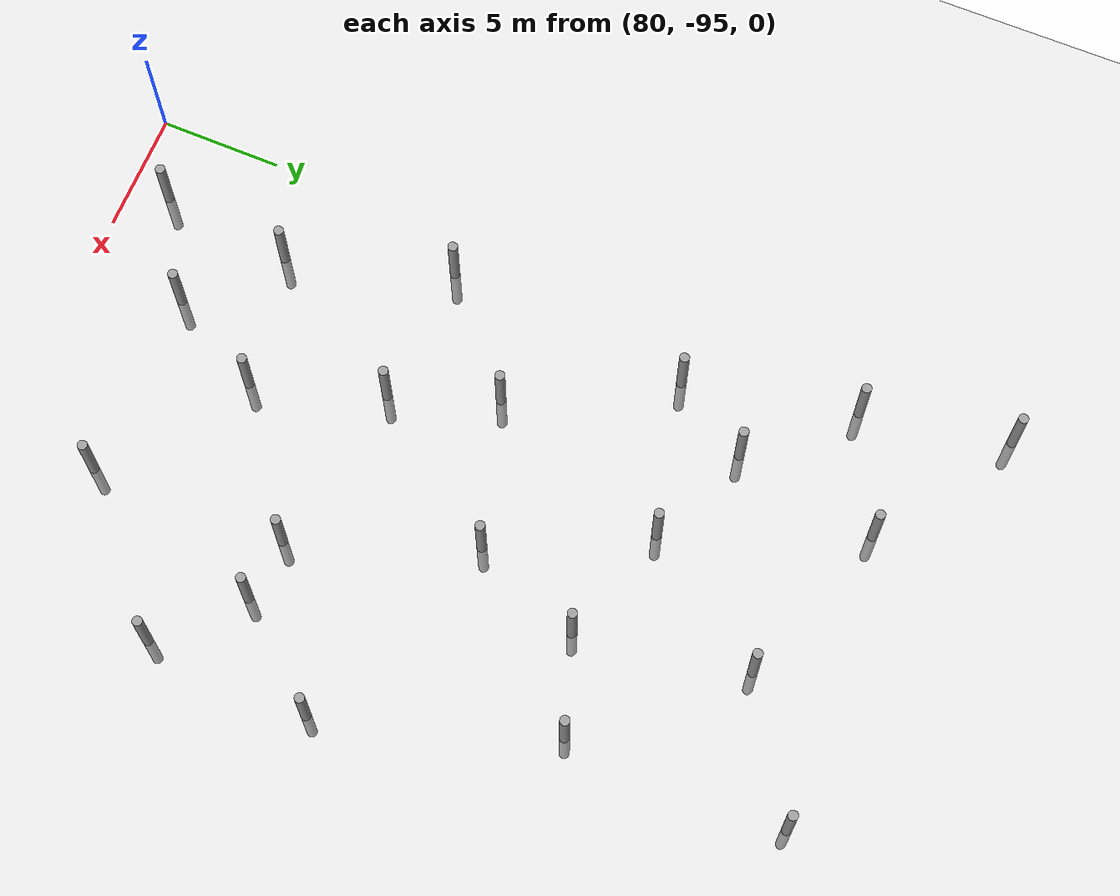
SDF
<sdf version="1.6">
 <world name="default">
  <model name="ground_plane">
   <static>1</static>
   <link name="link">
    <collision name="collision">
     <geometry><plane><normal>0 0 1</normal><size>100 100</size></plane></geometry>
     <surface><friction><ode><mu>100</mu><mu2>50</mu2></ode></friction></surface>
    </collision>
    <visual name="visual">
     <cast_shadows>0</cast_shadows>
     <geometry><plane><normal>0 0 1</normal><size>100 100</size></plane></geometry>
     <material>
      <script><uri>file://media/materials/scripts/gazebo.material</uri><name>Gazebo/Grey</name></script>
     </material>
    </visual>
   </link>
  </model>
  <model name="empty_pillars_13">
   <model name="empty_pillar_clone_0">
    <link name="link">
     <inertial>
      <mass>1</mass>
      <inertia><ixx>0.145833</ixx><ixy>0</ixy><ixz>0</ixz><iyy>0.145833</iyy><iyz>0</iyz><izz>0.125</izz></inertia>
     </inertial>
     <visual name="visual">
      <geometry><cylinder><radius>0.2</radius><length>5</length></cylinder></geometry>
      <material>
       <script><name>Gazebo/Grey</name><uri>file://media/materials/scripts/gazebo.material</uri></script>
       <shader type="vertex"><normal_map>__default__</normal_map></shader>
       <ambient>0.3 0.3 0.3 1</ambient>
       <diffuse>0.7 0.7 0.7 1</diffuse>
       <specular>0.01 0.01 0.01 1</specular>
       <emissive>0 0 0 1</emissive>
      </material>
     </visual>
     <collision name="collision">
      <geometry><cylinder><radius>0.05</radius><length>5</length></cylinder></geometry>
      <surface>
       <friction>
        <ode><mu>1</mu><mu2>1</mu2><fdir1>0 0 0</fdir1><slip1>0</slip1><slip2>0</slip2></ode>
        <torsional>
         <coefficient>1</coefficient>
         <patch_radius>0</patch_radius>
         <surface_radius>0</surface_radius>
         <use_patch_radius>1</use_patch_radius>
         <ode><slip>0</slip></ode>
        </torsional>
       </friction>
       <bounce><restitution_coefficient>0</restitution_coefficient><threshold>1e+06</threshold></bounce>
       <contact>
        <collide_without_contact>0</collide_without_contact>
        <collide_without_contact_bitmask>1</collide_without_contact_bitmask>
        <collide_bitmask>1</collide_bitmask>
        <ode>
         <soft_cfm>0</soft_cfm>
         <soft_erp>0.2</soft_erp>
         <kp>1e+13</kp>
         <kd>1</kd>
         <max_vel>0.01</max_vel>
         <min_depth>0</min_depth>
        </ode>
        <bullet>
         <split_impulse>1</split_impulse>
         <split_impulse_penetration_threshold>-0.01</split_impulse_penetration_threshold>
         <soft_cfm>0</soft_cfm>
         <soft_erp>0.2</soft_erp>
         <kp>1e+13</kp>
         <kd>1</kd>
        </bullet>
       </contact>
      </surface>
     </collision>
    </link>
    <static>0</static>
    <pose>10.3453 -7.35986 0 0 -0 0</pose>
   </model>
   <model name="empty_pillar_clone_1">
    <link name="link">
     <inertial>
      <mass>1</mass>
      <inertia><ixx>0.145833</ixx><ixy>0</ixy><ixz>0</ixz><iyy>0.145833</iyy><iyz>0</iyz><izz>0.125</izz></inertia>
     </inertial>
     <visual name="visual">
      <geometry><cylinder><radius>0.2</radius><length>5</length></cylinder></geometry>
      <material>
       <script><name>Gazebo/Grey</name><uri>file://media/materials/scripts/gazebo.material</uri></script>
       <shader type="vertex"><normal_map>__default__</normal_map></shader>
       <ambient>0.3 0.3 0.3 1</ambient>
       <diffuse>0.7 0.7 0.7 1</diffuse>
       <specular>0.01 0.01 0.01 1</specular>
       <emissive>0 0 0 1</emissive>
      </material>
     </visual>
     <collision name="collision">
      <geometry><cylinder><radius>0.05</radius><length>5</length></cylinder></geometry>
      <surface>
       <friction>
        <ode><mu>1</mu><mu2>1</mu2><fdir1>0 0 0</fdir1><slip1>0</slip1><slip2>0</slip2></ode>
        <torsional>
         <coefficient>1</coefficient>
         <patch_radius>0</patch_radius>
         <surface_radius>0</surface_radius>
         <use_patch_radius>1</use_patch_radius>
         <ode><slip>0</slip></ode>
        </torsional>
       </friction>
       <bounce><restitution_coefficient>0</restitution_coefficient><threshold>1e+06</threshold></bounce>
       <contact>
        <collide_without_contact>0</collide_without_contact>
        <collide_without_contact_bitmask>1</collide_without_contact_bitmask>
        <collide_bitmask>1</collide_bitmask>
        <ode>
         <soft_cfm>0</soft_cfm>
         <soft_erp>0.2</soft_erp>
         <kp>1e+13</kp>
         <kd>1</kd>
         <max_vel>0.01</max_vel>
         <min_depth>0</min_depth>
        </ode>
        <bullet>
         <split_impulse>1</split_impulse>
         <split_impulse_penetration_threshold>-0.01</split_impulse_penetration_threshold>
         <soft_cfm>0</soft_cfm>
         <soft_erp>0.2</soft_erp>
         <kp>1e+13</kp>
         <kd>1</kd>
        </bullet>
       </contact>
      </surface>
     </collision>
    </link>
    <static>0</static>
    <pose>8.92248 2.14838 0 0 -0 0</pose>
   </model>
   <model name="empty_pillar_clone_10">
    <link name="link">
     <inertial>
      <mass>1</mass>
      <inertia><ixx>0.145833</ixx><ixy>0</ixy><ixz>0</ixz><iyy>0.145833</iyy><iyz>0</iyz><izz>0.125</izz></inertia>
     </inertial>
     <visual name="visual">
      <geometry><cylinder><radius>0.2</radius><length>5</length></cylinder></geometry>
      <material>
       <script><name>Gazebo/Grey</name><uri>file://media/materials/scripts/gazebo.material</uri></script>
       <shader type="vertex"><normal_map>__default__</normal_map></shader>
       <ambient>0.3 0.3 0.3 1</ambient>
       <diffuse>0.7 0.7 0.7 1</diffuse>
       <specular>0.01 0.01 0.01 1</specular>
       <emissive>0 0 0 1</emissive>
      </material>
     </visual>
     <collision name="collision">
      <geometry><cylinder><radius>0.05</radius><length>5</length></cylinder></geometry>
      <surface>
       <friction>
        <ode><mu>1</mu><mu2>1</mu2><fdir1>0 0 0</fdir1><slip1>0</slip1><slip2>0</slip2></ode>
        <torsional>
         <coefficient>1</coefficient>
         <patch_radius>0</patch_radius>
         <surface_radius>0</surface_radius>
         <use_patch_radius>1</use_patch_radius>
         <ode><slip>0</slip></ode>
        </torsional>
       </friction>
       <bounce><restitution_coefficient>0</restitution_coefficient><threshold>1e+06</threshold></bounce>
       <contact>
        <collide_without_contact>0</collide_without_contact>
        <collide_without_contact_bitmask>1</collide_without_contact_bitmask>
        <collide_bitmask>1</collide_bitmask>
        <ode>
         <soft_cfm>0</soft_cfm>
         <soft_erp>0.2</soft_erp>
         <kp>1e+13</kp>
         <kd>1</kd>
         <max_vel>0.01</max_vel>
         <min_depth>0</min_depth>
        </ode>
        <bullet>
         <split_impulse>1</split_impulse>
         <split_impulse_penetration_threshold>-0.01</split_impulse_penetration_threshold>
         <soft_cfm>0</soft_cfm>
         <soft_erp>0.2</soft_erp>
         <kp>1e+13</kp>
         <kd>1</kd>
        </bullet>
       </contact>
      </surface>
     </collision>
    </link>
    <static>0</static>
    <pose>13.5083 -16.8403 0 0 -0 0</pose>
   </model>
   <model name="empty_pillar_clone_11">
    <link name="link">
     <inertial>
      <mass>1</mass>
      <inertia><ixx>0.145833</ixx><ixy>0</ixy><ixz>0</ixz><iyy>0.145833</iyy><iyz>0</iyz><izz>0.125</izz></inertia>
     </inertial>
     <visual name="visual">
      <geometry><cylinder><radius>0.2</radius><length>5</length></cylinder></geometry>
      <material>
       <script><name>Gazebo/Grey</name><uri>file://media/materials/scripts/gazebo.material</uri></script>
       <shader type="vertex"><normal_map>__default__</normal_map></shader>
       <ambient>0.3 0.3 0.3 1</ambient>
       <diffuse>0.7 0.7 0.7 1</diffuse>
       <specular>0.01 0.01 0.01 1</specular>
       <emissive>0 0 0 1</emissive>
      </material>
     </visual>
     <collision name="collision">
      <geometry><cylinder><radius>0.05</radius><length>5</length></cylinder></geometry>
      <surface>
       <friction>
        <ode><mu>1</mu><mu2>1</mu2><fdir1>0 0 0</fdir1><slip1>0</slip1><slip2>0</slip2></ode>
        <torsional>
         <coefficient>1</coefficient>
         <patch_radius>0</patch_radius>
         <surface_radius>0</surface_radius>
         <use_patch_radius>1</use_patch_radius>
         <ode><slip>0</slip></ode>
        </torsional>
       </friction>
       <bounce><restitution_coefficient>0</restitution_coefficient><threshold>1e+06</threshold></bounce>
       <contact>
        <collide_without_contact>0</collide_without_contact>
        <collide_without_contact_bitmask>1</collide_without_contact_bitmask>
        <collide_bitmask>1</collide_bitmask>
        <ode>
         <soft_cfm>0</soft_cfm>
         <soft_erp>0.2</soft_erp>
         <kp>1e+13</kp>
         <kd>1</kd>
         <max_vel>0.01</max_vel>
         <min_depth>0</min_depth>
        </ode>
        <bullet>
         <split_impulse>1</split_impulse>
         <split_impulse_penetration_threshold>-0.01</split_impulse_penetration_threshold>
         <soft_cfm>0</soft_cfm>
         <soft_erp>0.2</soft_erp>
         <kp>1e+13</kp>
         <kd>1</kd>
        </bullet>
       </contact>
      </surface>
     </collision>
    </link>
    <static>0</static>
    <pose>7.98536 -17.8403 0 0 -0 0</pose>
   </model>
   <model name="empty_pillar_clone_2">
    <link name="link">
     <inertial>
      <mass>1</mass>
      <inertia><ixx>0.145833</ixx><ixy>0</ixy><ixz>0</ixz><iyy>0.145833</iyy><iyz>0</iyz><izz>0.125</izz></inertia>
     </inertial>
     <visual name="visual">
      <geometry><cylinder><radius>0.2</radius><length>5</length></cylinder></geometry>
      <material>
       <script><name>Gazebo/Grey</name><uri>file://media/materials/scripts/gazebo.material</uri></script>
       <shader type="vertex"><normal_map>__default__</normal_map></shader>
       <ambient>0.3 0.3 0.3 1</ambient>
       <diffuse>0.7 0.7 0.7 1</diffuse>
       <specular>0.01 0.01 0.01 1</specular>
       <emissive>0 0 0 1</emissive>
      </material>
     </visual>
     <collision name="collision">
      <geometry><cylinder><radius>0.05</radius><length>5</length></cylinder></geometry>
      <surface>
       <friction>
        <ode><mu>1</mu><mu2>1</mu2><fdir1>0 0 0</fdir1><slip1>0</slip1><slip2>0</slip2></ode>
        <torsional>
         <coefficient>1</coefficient>
         <patch_radius>0</patch_radius>
         <surface_radius>0</surface_radius>
         <use_patch_radius>1</use_patch_radius>
         <ode><slip>0</slip></ode>
        </torsional>
       </friction>
       <bounce><restitution_coefficient>0</restitution_coefficient><threshold>1e+06</threshold></bounce>
       <contact>
        <collide_without_contact>0</collide_without_contact>
        <collide_without_contact_bitmask>1</collide_without_contact_bitmask>
        <collide_bitmask>1</collide_bitmask>
        <ode>
         <soft_cfm>0</soft_cfm>
         <soft_erp>0.2</soft_erp>
         <kp>1e+13</kp>
         <kd>1</kd>
         <max_vel>0.01</max_vel>
         <min_depth>0</min_depth>
        </ode>
        <bullet>
         <split_impulse>1</split_impulse>
         <split_impulse_penetration_threshold>-0.01</split_impulse_penetration_threshold>
         <soft_cfm>0</soft_cfm>
         <soft_erp>0.2</soft_erp>
         <kp>1e+13</kp>
         <kd>1</kd>
        </bullet>
       </contact>
      </surface>
     </collision>
    </link>
    <static>0</static>
    <pose>6.92427 -1.06221 0 0 -0 0</pose>
   </model>
   <model name="empty_pillar_clone_27">
    <link name="link">
     <inertial>
      <mass>1</mass>
      <inertia><ixx>0.145833</ixx><ixy>0</ixy><ixz>0</ixz><iyy>0.145833</iyy><iyz>0</iyz><izz>0.125</izz></inertia>
     </inertial>
     <visual name="visual">
      <geometry><cylinder><radius>0.2</radius><length>5</length></cylinder></geometry>
      <material>
       <script><name>Gazebo/Grey</name><uri>file://media/materials/scripts/gazebo.material</uri></script>
       <shader type="vertex"><normal_map>__default__</normal_map></shader>
       <ambient>0.3 0.3 0.3 1</ambient>
       <diffuse>0.7 0.7 0.7 1</diffuse>
       <specular>0.01 0.01 0.01 1</specular>
       <emissive>0 0 0 1</emissive>
      </material>
     </visual>
     <collision name="collision">
      <geometry><cylinder><radius>0.05</radius><length>5</length></cylinder></geometry>
      <surface>
       <friction>
        <ode><mu>1</mu><mu2>1</mu2><fdir1>0 0 0</fdir1><slip1>0</slip1><slip2>0</slip2></ode>
        <torsional>
         <coefficient>1</coefficient>
         <patch_radius>0</patch_radius>
         <surface_radius>0</surface_radius>
         <use_patch_radius>1</use_patch_radius>
         <ode><slip>0</slip></ode>
        </torsional>
       </friction>
       <bounce><restitution_coefficient>0</restitution_coefficient><threshold>1e+06</threshold></bounce>
       <contact>
        <collide_without_contact>0</collide_without_contact>
        <collide_without_contact_bitmask>1</collide_without_contact_bitmask>
        <collide_bitmask>1</collide_bitmask>
        <ode>
         <soft_cfm>0</soft_cfm>
         <soft_erp>0.2</soft_erp>
         <kp>1e+13</kp>
         <kd>1</kd>
         <max_vel>0.01</max_vel>
         <min_depth>0</min_depth>
        </ode>
        <bullet>
         <split_impulse>1</split_impulse>
         <split_impulse_penetration_threshold>-0.01</split_impulse_penetration_threshold>
         <soft_cfm>0</soft_cfm>
         <soft_erp>0.2</soft_erp>
         <kp>1e+13</kp>
         <kd>1</kd>
        </bullet>
       </contact>
      </surface>
     </collision>
    </link>
    <static>0</static>
    <pose>4.32163 11.823 0 0 -0 0</pose>
   </model>
   <model name="empty_pillar_clone_29">
    <link name="link">
     <inertial>
      <mass>1</mass>
      <inertia><ixx>0.145833</ixx><ixy>0</ixy><ixz>0</ixz><iyy>0.145833</iyy><iyz>0</iyz><izz>0.125</izz></inertia>
     </inertial>
     <visual name="visual">
      <geometry><cylinder><radius>0.2</radius><length>5</length></cylinder></geometry>
      <material>
       <script><name>Gazebo/Grey</name><uri>file://media/materials/scripts/gazebo.material</uri></script>
       <shader type="vertex"><normal_map>__default__</normal_map></shader>
       <ambient>0.3 0.3 0.3 1</ambient>
       <diffuse>0.7 0.7 0.7 1</diffuse>
       <specular>0.01 0.01 0.01 1</specular>
       <emissive>0 0 0 1</emissive>
      </material>
     </visual>
     <collision name="collision">
      <geometry><cylinder><radius>0.05</radius><length>5</length></cylinder></geometry>
      <surface>
       <friction>
        <ode><mu>1</mu><mu2>1</mu2><fdir1>0 0 0</fdir1><slip1>0</slip1><slip2>0</slip2></ode>
        <torsional>
         <coefficient>1</coefficient>
         <patch_radius>0</patch_radius>
         <surface_radius>0</surface_radius>
         <use_patch_radius>1</use_patch_radius>
         <ode><slip>0</slip></ode>
        </torsional>
       </friction>
       <bounce><restitution_coefficient>0</restitution_coefficient><threshold>1e+06</threshold></bounce>
       <contact>
        <collide_without_contact>0</collide_without_contact>
        <collide_without_contact_bitmask>1</collide_without_contact_bitmask>
        <collide_bitmask>1</collide_bitmask>
        <ode>
         <soft_cfm>0</soft_cfm>
         <soft_erp>0.2</soft_erp>
         <kp>1e+13</kp>
         <kd>1</kd>
         <max_vel>0.01</max_vel>
         <min_depth>0</min_depth>
        </ode>
        <bullet>
         <split_impulse>1</split_impulse>
         <split_impulse_penetration_threshold>-0.01</split_impulse_penetration_threshold>
         <soft_cfm>0</soft_cfm>
         <soft_erp>0.2</soft_erp>
         <kp>1e+13</kp>
         <kd>1</kd>
        </bullet>
       </contact>
      </surface>
     </collision>
    </link>
    <static>0</static>
    <pose>10.08 8.0876 0 0 -0 0</pose>
   </model>
   <model name="empty_pillar_clone_3">
    <link name="link">
     <inertial>
      <mass>1</mass>
      <inertia><ixx>0.145833</ixx><ixy>0</ixy><ixz>0</ixz><iyy>0.145833</iyy><iyz>0</iyz><izz>0.125</izz></inertia>
     </inertial>
     <visual name="visual">
      <geometry><cylinder><radius>0.2</radius><length>5</length></cylinder></geometry>
      <material>
       <script><name>Gazebo/Grey</name><uri>file://media/materials/scripts/gazebo.material</uri></script>
       <shader type="vertex"><normal_map>__default__</normal_map></shader>
       <ambient>0.3 0.3 0.3 1</ambient>
       <diffuse>0.7 0.7 0.7 1</diffuse>
       <specular>0.01 0.01 0.01 1</specular>
       <emissive>0 0 0 1</emissive>
      </material>
     </visual>
     <collision name="collision">
      <geometry><cylinder><radius>0.05</radius><length>5</length></cylinder></geometry>
      <surface>
       <friction>
        <ode><mu>1</mu><mu2>1</mu2><fdir1>0 0 0</fdir1><slip1>0</slip1><slip2>0</slip2></ode>
        <torsional>
         <coefficient>1</coefficient>
         <patch_radius>0</patch_radius>
         <surface_radius>0</surface_radius>
         <use_patch_radius>1</use_patch_radius>
         <ode><slip>0</slip></ode>
        </torsional>
       </friction>
       <bounce><restitution_coefficient>0</restitution_coefficient><threshold>1e+06</threshold></bounce>
       <contact>
        <collide_without_contact>0</collide_without_contact>
        <collide_without_contact_bitmask>1</collide_without_contact_bitmask>
        <collide_bitmask>1</collide_bitmask>
        <ode>
         <soft_cfm>0</soft_cfm>
         <soft_erp>0.2</soft_erp>
         <kp>1e+13</kp>
         <kd>1</kd>
         <max_vel>0.01</max_vel>
         <min_depth>0</min_depth>
        </ode>
        <bullet>
         <split_impulse>1</split_impulse>
         <split_impulse_penetration_threshold>-0.01</split_impulse_penetration_threshold>
         <soft_cfm>0</soft_cfm>
         <soft_erp>0.2</soft_erp>
         <kp>1e+13</kp>
         <kd>1</kd>
        </bullet>
       </contact>
      </surface>
     </collision>
    </link>
    <static>0</static>
    <pose>5.99316 -11.2211 0 0 -0 0</pose>
   </model>
   <model name="empty_pillar_clone_31">
    <link name="link">
     <inertial>
      <mass>1</mass>
      <inertia><ixx>0.145833</ixx><ixy>0</ixy><ixz>0</ixz><iyy>0.145833</iyy><iyz>0</iyz><izz>0.125</izz></inertia>
     </inertial>
     <visual name="visual">
      <geometry><cylinder><radius>0.2</radius><length>5</length></cylinder></geometry>
      <material>
       <script><name>Gazebo/Grey</name><uri>file://media/materials/scripts/gazebo.material</uri></script>
       <shader type="vertex"><normal_map>__default__</normal_map></shader>
       <ambient>0.3 0.3 0.3 1</ambient>
       <diffuse>0.7 0.7 0.7 1</diffuse>
       <specular>0.01 0.01 0.01 1</specular>
       <emissive>0 0 0 1</emissive>
      </material>
     </visual>
     <collision name="collision">
      <geometry><cylinder><radius>0.05</radius><length>5</length></cylinder></geometry>
      <surface>
       <friction>
        <ode><mu>1</mu><mu2>1</mu2><fdir1>0 0 0</fdir1><slip1>0</slip1><slip2>0</slip2></ode>
        <torsional>
         <coefficient>1</coefficient>
         <patch_radius>0</patch_radius>
         <surface_radius>0</surface_radius>
         <use_patch_radius>1</use_patch_radius>
         <ode><slip>0</slip></ode>
        </torsional>
       </friction>
       <bounce><restitution_coefficient>0</restitution_coefficient><threshold>1e+06</threshold></bounce>
       <contact>
        <collide_without_contact>0</collide_without_contact>
        <collide_without_contact_bitmask>1</collide_without_contact_bitmask>
        <collide_bitmask>1</collide_bitmask>
        <ode>
         <soft_cfm>0</soft_cfm>
         <soft_erp>0.2</soft_erp>
         <kp>1e+13</kp>
         <kd>1</kd>
         <max_vel>0.01</max_vel>
         <min_depth>0</min_depth>
        </ode>
        <bullet>
         <split_impulse>1</split_impulse>
         <split_impulse_penetration_threshold>-0.01</split_impulse_penetration_threshold>
         <soft_cfm>0</soft_cfm>
         <soft_erp>0.2</soft_erp>
         <kp>1e+13</kp>
         <kd>1</kd>
        </bullet>
       </contact>
      </surface>
     </collision>
    </link>
    <static>0</static>
    <pose>22.0722 9.04182 0 0 -0 0</pose>
   </model>
   <model name="empty_pillar_clone_32">
    <link name="link">
     <inertial>
      <mass>1</mass>
      <inertia><ixx>0.145833</ixx><ixy>0</ixy><ixz>0</ixz><iyy>0.145833</iyy><iyz>0</iyz><izz>0.125</izz></inertia>
     </inertial>
     <visual name="visual">
      <geometry><cylinder><radius>0.2</radius><length>5</length></cylinder></geometry>
      <material>
       <script><name>Gazebo/Grey</name><uri>file://media/materials/scripts/gazebo.material</uri></script>
       <shader type="vertex"><normal_map>__default__</normal_map></shader>
       <ambient>0.3 0.3 0.3 1</ambient>
       <diffuse>0.7 0.7 0.7 1</diffuse>
       <specular>0.01 0.01 0.01 1</specular>
       <emissive>0 0 0 1</emissive>
      </material>
     </visual>
     <collision name="collision">
      <geometry><cylinder><radius>0.05</radius><length>5</length></cylinder></geometry>
      <surface>
       <friction>
        <ode><mu>1</mu><mu2>1</mu2><fdir1>0 0 0</fdir1><slip1>0</slip1><slip2>0</slip2></ode>
        <torsional>
         <coefficient>1</coefficient>
         <patch_radius>0</patch_radius>
         <surface_radius>0</surface_radius>
         <use_patch_radius>1</use_patch_radius>
         <ode><slip>0</slip></ode>
        </torsional>
       </friction>
       <bounce><restitution_coefficient>0</restitution_coefficient><threshold>1e+06</threshold></bounce>
       <contact>
        <collide_without_contact>0</collide_without_contact>
        <collide_without_contact_bitmask>1</collide_without_contact_bitmask>
        <collide_bitmask>1</collide_bitmask>
        <ode>
         <soft_cfm>0</soft_cfm>
         <soft_erp>0.2</soft_erp>
         <kp>1e+13</kp>
         <kd>1</kd>
         <max_vel>0.01</max_vel>
         <min_depth>0</min_depth>
        </ode>
        <bullet>
         <split_impulse>1</split_impulse>
         <split_impulse_penetration_threshold>-0.01</split_impulse_penetration_threshold>
         <soft_cfm>0</soft_cfm>
         <soft_erp>0.2</soft_erp>
         <kp>1e+13</kp>
         <kd>1</kd>
        </bullet>
       </contact>
      </surface>
     </collision>
    </link>
    <static>0</static>
    <pose>21.9854 0.15966 0 0 -0 0</pose>
   </model>
   <model name="empty_pillar_clone_33">
    <link name="link">
     <inertial>
      <mass>1</mass>
      <inertia><ixx>0.145833</ixx><ixy>0</ixy><ixz>0</ixz><iyy>0.145833</iyy><iyz>0</iyz><izz>0.125</izz></inertia>
     </inertial>
     <visual name="visual">
      <geometry><cylinder><radius>0.2</radius><length>5</length></cylinder></geometry>
      <material>
       <script><name>Gazebo/Grey</name><uri>file://media/materials/scripts/gazebo.material</uri></script>
       <shader type="vertex"><normal_map>__default__</normal_map></shader>
       <ambient>0.3 0.3 0.3 1</ambient>
       <diffuse>0.7 0.7 0.7 1</diffuse>
       <specular>0.01 0.01 0.01 1</specular>
       <emissive>0 0 0 1</emissive>
      </material>
     </visual>
     <collision name="collision">
      <geometry><cylinder><radius>0.05</radius><length>5</length></cylinder></geometry>
      <surface>
       <friction>
        <ode><mu>1</mu><mu2>1</mu2><fdir1>0 0 0</fdir1><slip1>0</slip1><slip2>0</slip2></ode>
        <torsional>
         <coefficient>1</coefficient>
         <patch_radius>0</patch_radius>
         <surface_radius>0</surface_radius>
         <use_patch_radius>1</use_patch_radius>
         <ode><slip>0</slip></ode>
        </torsional>
       </friction>
       <bounce><restitution_coefficient>0</restitution_coefficient><threshold>1e+06</threshold></bounce>
       <contact>
        <collide_without_contact>0</collide_without_contact>
        <collide_without_contact_bitmask>1</collide_without_contact_bitmask>
        <collide_bitmask>1</collide_bitmask>
        <ode>
         <soft_cfm>0</soft_cfm>
         <soft_erp>0.2</soft_erp>
         <kp>1e+13</kp>
         <kd>1</kd>
         <max_vel>0.01</max_vel>
         <min_depth>0</min_depth>
        </ode>
        <bullet>
         <split_impulse>1</split_impulse>
         <split_impulse_penetration_threshold>-0.01</split_impulse_penetration_threshold>
         <soft_cfm>0</soft_cfm>
         <soft_erp>0.2</soft_erp>
         <kp>1e+13</kp>
         <kd>1</kd>
        </bullet>
       </contact>
      </surface>
     </collision>
    </link>
    <static>0</static>
    <pose>21.5621 -13.0704 0 0 -0 0</pose>
   </model>
   <model name="empty_pillar_clone_34">
    <link name="link">
     <inertial>
      <mass>1</mass>
      <inertia><ixx>0.145833</ixx><ixy>0</ixy><ixz>0</ixz><iyy>0.145833</iyy><iyz>0</iyz><izz>0.125</izz></inertia>
     </inertial>
     <visual name="visual">
      <geometry><cylinder><radius>0.2</radius><length>5</length></cylinder></geometry>
      <material>
       <script><name>Gazebo/Grey</name><uri>file://media/materials/scripts/gazebo.material</uri></script>
       <shader type="vertex"><normal_map>__default__</normal_map></shader>
       <ambient>0.3 0.3 0.3 1</ambient>
       <diffuse>0.7 0.7 0.7 1</diffuse>
       <specular>0.01 0.01 0.01 1</specular>
       <emissive>0 0 0 1</emissive>
      </material>
     </visual>
     <collision name="collision">
      <geometry><cylinder><radius>0.05</radius><length>5</length></cylinder></geometry>
      <surface>
       <friction>
        <ode><mu>1</mu><mu2>1</mu2><fdir1>0 0 0</fdir1><slip1>0</slip1><slip2>0</slip2></ode>
        <torsional>
         <coefficient>1</coefficient>
         <patch_radius>0</patch_radius>
         <surface_radius>0</surface_radius>
         <use_patch_radius>1</use_patch_radius>
         <ode><slip>0</slip></ode>
        </torsional>
       </friction>
       <bounce><restitution_coefficient>0</restitution_coefficient><threshold>1e+06</threshold></bounce>
       <contact>
        <collide_without_contact>0</collide_without_contact>
        <collide_without_contact_bitmask>1</collide_without_contact_bitmask>
        <collide_bitmask>1</collide_bitmask>
        <ode>
         <soft_cfm>0</soft_cfm>
         <soft_erp>0.2</soft_erp>
         <kp>1e+13</kp>
         <kd>1</kd>
         <max_vel>0.01</max_vel>
         <min_depth>0</min_depth>
        </ode>
        <bullet>
         <split_impulse>1</split_impulse>
         <split_impulse_penetration_threshold>-0.01</split_impulse_penetration_threshold>
         <soft_cfm>0</soft_cfm>
         <soft_erp>0.2</soft_erp>
         <kp>1e+13</kp>
         <kd>1</kd>
        </bullet>
       </contact>
      </surface>
     </collision>
    </link>
    <static>0</static>
    <pose>19.0861 -20.8946 0 0 -0 0</pose>
   </model>
   <model name="empty_pillar_clone_48">
    <link name="link">
     <inertial>
      <mass>1</mass>
      <inertia><ixx>0.145833</ixx><ixy>0</ixy><ixz>0</ixz><iyy>0.145833</iyy><iyz>0</iyz><izz>0.125</izz></inertia>
     </inertial>
     <visual name="visual">
      <geometry><cylinder><radius>0.2</radius><length>5</length></cylinder></geometry>
      <material>
       <script><name>Gazebo/Grey</name><uri>file://media/materials/scripts/gazebo.material</uri></script>
       <shader type="vertex"><normal_map>__default__</normal_map></shader>
       <ambient>0.3 0.3 0.3 1</ambient>
       <diffuse>0.7 0.7 0.7 1</diffuse>
       <specular>0.01 0.01 0.01 1</specular>
       <emissive>0 0 0 1</emissive>
      </material>
     </visual>
     <collision name="collision">
      <geometry><cylinder><radius>0.05</radius><length>5</length></cylinder></geometry>
      <surface>
       <friction>
        <ode><mu>1</mu><mu2>1</mu2><fdir1>0 0 0</fdir1><slip1>0</slip1><slip2>0</slip2></ode>
        <torsional>
         <coefficient>1</coefficient>
         <patch_radius>0</patch_radius>
         <surface_radius>0</surface_radius>
         <use_patch_radius>1</use_patch_radius>
         <ode><slip>0</slip></ode>
        </torsional>
       </friction>
       <bounce><restitution_coefficient>0</restitution_coefficient><threshold>1e+06</threshold></bounce>
       <contact>
        <collide_without_contact>0</collide_without_contact>
        <collide_without_contact_bitmask>1</collide_without_contact_bitmask>
        <collide_bitmask>1</collide_bitmask>
        <ode>
         <soft_cfm>0</soft_cfm>
         <soft_erp>0.2</soft_erp>
         <kp>1e+13</kp>
         <kd>1</kd>
         <max_vel>0.01</max_vel>
         <min_depth>0</min_depth>
        </ode>
        <bullet>
         <split_impulse>1</split_impulse>
         <split_impulse_penetration_threshold>-0.01</split_impulse_penetration_threshold>
         <soft_cfm>0</soft_cfm>
         <soft_erp>0.2</soft_erp>
         <kp>1e+13</kp>
         <kd>1</kd>
        </bullet>
       </contact>
      </surface>
     </collision>
    </link>
    <static>0</static>
    <pose>16.2633 -5.65052 0 0 -0 0</pose>
   </model>
   <model name="empty_pillar_clone_51">
    <link name="link">
     <inertial>
      <mass>1</mass>
      <inertia><ixx>0.145833</ixx><ixy>0</ixy><ixz>0</ixz><iyy>0.145833</iyy><iyz>0</iyz><izz>0.125</izz></inertia>
     </inertial>
     <visual name="visual">
      <geometry><cylinder><radius>0.2</radius><length>5</length></cylinder></geometry>
      <material>
       <script><name>Gazebo/Grey</name><uri>file://media/materials/scripts/gazebo.material</uri></script>
       <shader type="vertex"><normal_map>__default__</normal_map></shader>
       <ambient>0.3 0.3 0.3 1</ambient>
       <diffuse>0.7 0.7 0.7 1</diffuse>
       <specular>0.01 0.01 0.01 1</specular>
       <emissive>0 0 0 1</emissive>
      </material>
     </visual>
     <collision name="collision">
      <geometry><cylinder><radius>0.05</radius><length>5</length></cylinder></geometry>
      <surface>
       <friction>
        <ode><mu>1</mu><mu2>1</mu2><fdir1>0 0 0</fdir1><slip1>0</slip1><slip2>0</slip2></ode>
        <torsional>
         <coefficient>1</coefficient>
         <patch_radius>0</patch_radius>
         <surface_radius>0</surface_radius>
         <use_patch_radius>1</use_patch_radius>
         <ode><slip>0</slip></ode>
        </torsional>
       </friction>
       <bounce><restitution_coefficient>0</restitution_coefficient><threshold>1e+06</threshold></bounce>
       <contact>
        <collide_without_contact>0</collide_without_contact>
        <collide_without_contact_bitmask>1</collide_without_contact_bitmask>
        <collide_bitmask>1</collide_bitmask>
        <ode>
         <soft_cfm>0</soft_cfm>
         <soft_erp>0.2</soft_erp>
         <kp>1e+13</kp>
         <kd>1</kd>
         <max_vel>0.01</max_vel>
         <min_depth>0</min_depth>
        </ode>
        <bullet>
         <split_impulse>1</split_impulse>
         <split_impulse_penetration_threshold>-0.01</split_impulse_penetration_threshold>
         <soft_cfm>0</soft_cfm>
         <soft_erp>0.2</soft_erp>
         <kp>1e+13</kp>
         <kd>1</kd>
        </bullet>
       </contact>
      </surface>
     </collision>
    </link>
    <static>0</static>
    <pose>11.8943 -11.5792 0 0 -0 0</pose>
   </model>
   <model name="empty_pillar_clone_52">
    <link name="link">
     <inertial>
      <mass>1</mass>
      <inertia><ixx>0.145833</ixx><ixy>0</ixy><ixz>0</ixz><iyy>0.145833</iyy><iyz>0</iyz><izz>0.125</izz></inertia>
     </inertial>
     <visual name="visual">
      <geometry><cylinder><radius>0.2</radius><length>5</length></cylinder></geometry>
      <material>
       <script><name>Gazebo/Grey</name><uri>file://media/materials/scripts/gazebo.material</uri></script>
       <shader type="vertex"><normal_map>__default__</normal_map></shader>
       <ambient>0.3 0.3 0.3 1</ambient>
       <diffuse>0.7 0.7 0.7 1</diffuse>
       <specular>0.01 0.01 0.01 1</specular>
       <emissive>0 0 0 1</emissive>
      </material>
     </visual>
     <collision name="collision">
      <geometry><cylinder><radius>0.05</radius><length>5</length></cylinder></geometry>
      <surface>
       <friction>
        <ode><mu>1</mu><mu2>1</mu2><fdir1>0 0 0</fdir1><slip1>0</slip1><slip2>0</slip2></ode>
        <torsional>
         <coefficient>1</coefficient>
         <patch_radius>0</patch_radius>
         <surface_radius>0</surface_radius>
         <use_patch_radius>1</use_patch_radius>
         <ode><slip>0</slip></ode>
        </torsional>
       </friction>
       <bounce><restitution_coefficient>0</restitution_coefficient><threshold>1e+06</threshold></bounce>
       <contact>
        <collide_without_contact>0</collide_without_contact>
        <collide_without_contact_bitmask>1</collide_without_contact_bitmask>
        <collide_bitmask>1</collide_bitmask>
        <ode>
         <soft_cfm>0</soft_cfm>
         <soft_erp>0.2</soft_erp>
         <kp>1e+13</kp>
         <kd>1</kd>
         <max_vel>0.01</max_vel>
         <min_depth>0</min_depth>
        </ode>
        <bullet>
         <split_impulse>1</split_impulse>
         <split_impulse_penetration_threshold>-0.01</split_impulse_penetration_threshold>
         <soft_cfm>0</soft_cfm>
         <soft_erp>0.2</soft_erp>
         <kp>1e+13</kp>
         <kd>1</kd>
        </bullet>
       </contact>
      </surface>
     </collision>
    </link>
    <static>0</static>
    <pose>11.2833 -20.8743 0 0 -0 0</pose>
   </model>
   <model name="empty_pillar_clone_53">
    <link name="link">
     <inertial>
      <mass>1</mass>
      <inertia><ixx>0.145833</ixx><ixy>0</ixy><ixz>0</ixz><iyy>0.145833</iyy><iyz>0</iyz><izz>0.125</izz></inertia>
     </inertial>
     <visual name="visual">
      <geometry><cylinder><radius>0.2</radius><length>5</length></cylinder></geometry>
      <material>
       <script><name>Gazebo/Grey</name><uri>file://media/materials/scripts/gazebo.material</uri></script>
       <shader type="vertex"><normal_map>__default__</normal_map></shader>
       <ambient>0.3 0.3 0.3 1</ambient>
       <diffuse>0.7 0.7 0.7 1</diffuse>
       <specular>0.01 0.01 0.01 1</specular>
       <emissive>0 0 0 1</emissive>
      </material>
     </visual>
     <collision name="collision">
      <geometry><cylinder><radius>0.05</radius><length>5</length></cylinder></geometry>
      <surface>
       <friction>
        <ode><mu>1</mu><mu2>1</mu2><fdir1>0 0 0</fdir1><slip1>0</slip1><slip2>0</slip2></ode>
        <torsional>
         <coefficient>1</coefficient>
         <patch_radius>0</patch_radius>
         <surface_radius>0</surface_radius>
         <use_patch_radius>1</use_patch_radius>
         <ode><slip>0</slip></ode>
        </torsional>
       </friction>
       <bounce><restitution_coefficient>0</restitution_coefficient><threshold>1e+06</threshold></bounce>
       <contact>
        <collide_without_contact>0</collide_without_contact>
        <collide_without_contact_bitmask>1</collide_without_contact_bitmask>
        <collide_bitmask>1</collide_bitmask>
        <ode>
         <soft_cfm>0</soft_cfm>
         <soft_erp>0.2</soft_erp>
         <kp>1e+13</kp>
         <kd>1</kd>
         <max_vel>0.01</max_vel>
         <min_depth>0</min_depth>
        </ode>
        <bullet>
         <split_impulse>1</split_impulse>
         <split_impulse_penetration_threshold>-0.01</split_impulse_penetration_threshold>
         <soft_cfm>0</soft_cfm>
         <soft_erp>0.2</soft_erp>
         <kp>1e+13</kp>
         <kd>1</kd>
        </bullet>
       </contact>
      </surface>
     </collision>
    </link>
    <static>0</static>
    <pose>7.32522 -23.3523 0 0 -0 0</pose>
   </model>
   <model name="empty_pillar_clone_54">
    <link name="link">
     <inertial>
      <mass>1</mass>
      <inertia><ixx>0.145833</ixx><ixy>0</ixy><ixz>0</ixz><iyy>0.145833</iyy><iyz>0</iyz><izz>0.125</izz></inertia>
     </inertial>
     <visual name="visual">
      <geometry><cylinder><radius>0.2</radius><length>5</length></cylinder></geometry>
      <material>
       <script><name>Gazebo/Grey</name><uri>file://media/materials/scripts/gazebo.material</uri></script>
       <shader type="vertex"><normal_map>__default__</normal_map></shader>
       <ambient>0.3 0.3 0.3 1</ambient>
       <diffuse>0.7 0.7 0.7 1</diffuse>
       <specular>0.01 0.01 0.01 1</specular>
       <emissive>0 0 0 1</emissive>
      </material>
     </visual>
     <collision name="collision">
      <geometry><cylinder><radius>0.05</radius><length>5</length></cylinder></geometry>
      <surface>
       <friction>
        <ode><mu>1</mu><mu2>1</mu2><fdir1>0 0 0</fdir1><slip1>0</slip1><slip2>0</slip2></ode>
        <torsional>
         <coefficient>1</coefficient>
         <patch_radius>0</patch_radius>
         <surface_radius>0</surface_radius>
         <use_patch_radius>1</use_patch_radius>
         <ode><slip>0</slip></ode>
        </torsional>
       </friction>
       <bounce><restitution_coefficient>0</restitution_coefficient><threshold>1e+06</threshold></bounce>
       <contact>
        <collide_without_contact>0</collide_without_contact>
        <collide_without_contact_bitmask>1</collide_without_contact_bitmask>
        <collide_bitmask>1</collide_bitmask>
        <ode>
         <soft_cfm>0</soft_cfm>
         <soft_erp>0.2</soft_erp>
         <kp>1e+13</kp>
         <kd>1</kd>
         <max_vel>0.01</max_vel>
         <min_depth>0</min_depth>
        </ode>
        <bullet>
         <split_impulse>1</split_impulse>
         <split_impulse_penetration_threshold>-0.01</split_impulse_penetration_threshold>
         <soft_cfm>0</soft_cfm>
         <soft_erp>0.2</soft_erp>
         <kp>1e+13</kp>
         <kd>1</kd>
        </bullet>
       </contact>
      </surface>
     </collision>
    </link>
    <static>0</static>
    <pose>24.557 -15.8784 0 0 -0 0</pose>
   </model>
   <model name="empty_pillar_clone_55">
    <link name="link">
     <inertial>
      <mass>1</mass>
      <inertia><ixx>0.145833</ixx><ixy>0</ixy><ixz>0</ixz><iyy>0.145833</iyy><iyz>0</iyz><izz>0.125</izz></inertia>
     </inertial>
     <visual name="visual">
      <geometry><cylinder><radius>0.2</radius><length>5</length></cylinder></geometry>
      <material>
       <script><name>Gazebo/Grey</name><uri>file://media/materials/scripts/gazebo.material</uri></script>
       <shader type="vertex"><normal_map>__default__</normal_map></shader>
       <ambient>0.3 0.3 0.3 1</ambient>
       <diffuse>0.7 0.7 0.7 1</diffuse>
       <specular>0.01 0.01 0.01 1</specular>
       <emissive>0 0 0 1</emissive>
      </material>
     </visual>
     <collision name="collision">
      <geometry><cylinder><radius>0.05</radius><length>5</length></cylinder></geometry>
      <surface>
       <friction>
        <ode><mu>1</mu><mu2>1</mu2><fdir1>0 0 0</fdir1><slip1>0</slip1><slip2>0</slip2></ode>
        <torsional>
         <coefficient>1</coefficient>
         <patch_radius>0</patch_radius>
         <surface_radius>0</surface_radius>
         <use_patch_radius>1</use_patch_radius>
         <ode><slip>0</slip></ode>
        </torsional>
       </friction>
       <bounce><restitution_coefficient>0</restitution_coefficient><threshold>1e+06</threshold></bounce>
       <contact>
        <collide_without_contact>0</collide_without_contact>
        <collide_without_contact_bitmask>1</collide_without_contact_bitmask>
        <collide_bitmask>1</collide_bitmask>
        <ode>
         <soft_cfm>0</soft_cfm>
         <soft_erp>0.2</soft_erp>
         <kp>1e+13</kp>
         <kd>1</kd>
         <max_vel>0.01</max_vel>
         <min_depth>0</min_depth>
        </ode>
        <bullet>
         <split_impulse>1</split_impulse>
         <split_impulse_penetration_threshold>-0.01</split_impulse_penetration_threshold>
         <soft_cfm>0</soft_cfm>
         <soft_erp>0.2</soft_erp>
         <kp>1e+13</kp>
         <kd>1</kd>
        </bullet>
       </contact>
      </surface>
     </collision>
    </link>
    <static>0</static>
    <pose>13.2247 0.382706 0 0 -0 0</pose>
   </model>
   <model name="empty_pillar_clone_57">
    <link name="link">
     <inertial>
      <mass>1</mass>
      <inertia><ixx>0.145833</ixx><ixy>0</ixy><ixz>0</ixz><iyy>0.145833</iyy><iyz>0</iyz><izz>0.125</izz></inertia>
     </inertial>
     <visual name="visual">
      <geometry><cylinder><radius>0.2</radius><length>5</length></cylinder></geometry>
      <material>
       <script><name>Gazebo/Grey</name><uri>file://media/materials/scripts/gazebo.material</uri></script>
       <shader type="vertex"><normal_map>__default__</normal_map></shader>
       <ambient>0.3 0.3 0.3 1</ambient>
       <diffuse>0.7 0.7 0.7 1</diffuse>
       <specular>0.01 0.01 0.01 1</specular>
       <emissive>0 0 0 1</emissive>
      </material>
     </visual>
     <collision name="collision">
      <geometry><cylinder><radius>0.05</radius><length>5</length></cylinder></geometry>
      <surface>
       <friction>
        <ode><mu>1</mu><mu2>1</mu2><fdir1>0 0 0</fdir1><slip1>0</slip1><slip2>0</slip2></ode>
        <torsional>
         <coefficient>1</coefficient>
         <patch_radius>0</patch_radius>
         <surface_radius>0</surface_radius>
         <use_patch_radius>1</use_patch_radius>
         <ode><slip>0</slip></ode>
        </torsional>
       </friction>
       <bounce><restitution_coefficient>0</restitution_coefficient><threshold>1e+06</threshold></bounce>
       <contact>
        <collide_without_contact>0</collide_without_contact>
        <collide_without_contact_bitmask>1</collide_without_contact_bitmask>
        <collide_bitmask>1</collide_bitmask>
        <ode>
         <soft_cfm>0</soft_cfm>
         <soft_erp>0.2</soft_erp>
         <kp>1e+13</kp>
         <kd>1</kd>
         <max_vel>0.01</max_vel>
         <min_depth>0</min_depth>
        </ode>
        <bullet>
         <split_impulse>1</split_impulse>
         <split_impulse_penetration_threshold>-0.01</split_impulse_penetration_threshold>
         <soft_cfm>0</soft_cfm>
         <soft_erp>0.2</soft_erp>
         <kp>1e+13</kp>
         <kd>1</kd>
        </bullet>
       </contact>
      </surface>
     </collision>
    </link>
    <static>0</static>
    <pose>5.4355 5.86468 0 0 -0 0</pose>
   </model>
   <model name="empty_pillar_clone_6">
    <link name="link">
     <inertial>
      <mass>1</mass>
      <inertia><ixx>0.145833</ixx><ixy>0</ixy><ixz>0</ixz><iyy>0.145833</iyy><iyz>0</iyz><izz>0.125</izz></inertia>
     </inertial>
     <visual name="visual">
      <geometry><cylinder><radius>0.2</radius><length>5</length></cylinder></geometry>
      <material>
       <script><name>Gazebo/Grey</name><uri>file://media/materials/scripts/gazebo.material</uri></script>
       <shader type="vertex"><normal_map>__default__</normal_map></shader>
       <ambient>0.3 0.3 0.3 1</ambient>
       <diffuse>0.7 0.7 0.7 1</diffuse>
       <specular>0.01 0.01 0.01 1</specular>
       <emissive>0 0 0 1</emissive>
      </material>
     </visual>
     <collision name="collision">
      <geometry><cylinder><radius>0.05</radius><length>5</length></cylinder></geometry>
      <surface>
       <friction>
        <ode><mu>1</mu><mu2>1</mu2><fdir1>0 0 0</fdir1><slip1>0</slip1><slip2>0</slip2></ode>
        <torsional>
         <coefficient>1</coefficient>
         <patch_radius>0</patch_radius>
         <surface_radius>0</surface_radius>
         <use_patch_radius>1</use_patch_radius>
         <ode><slip>0</slip></ode>
        </torsional>
       </friction>
       <bounce><restitution_coefficient>0</restitution_coefficient><threshold>1e+06</threshold></bounce>
       <contact>
        <collide_without_contact>0</collide_without_contact>
        <collide_without_contact_bitmask>1</collide_without_contact_bitmask>
        <collide_bitmask>1</collide_bitmask>
        <ode>
         <soft_cfm>0</soft_cfm>
         <soft_erp>0.2</soft_erp>
         <kp>1e+13</kp>
         <kd>1</kd>
         <max_vel>0.01</max_vel>
         <min_depth>0</min_depth>
        </ode>
        <bullet>
         <split_impulse>1</split_impulse>
         <split_impulse_penetration_threshold>-0.01</split_impulse_penetration_threshold>
         <soft_cfm>0</soft_cfm>
         <soft_erp>0.2</soft_erp>
         <kp>1e+13</kp>
         <kd>1</kd>
        </bullet>
       </contact>
      </surface>
     </collision>
    </link>
    <static>0</static>
    <pose>24.9156 -9.11394 0 0 -0 0</pose>
   </model>
   <model name="empty_pillar_clone_7">
    <link name="link">
     <inertial>
      <mass>1</mass>
      <inertia><ixx>0.145833</ixx><ixy>0</ixy><ixz>0</ixz><iyy>0.145833</iyy><iyz>0</iyz><izz>0.125</izz></inertia>
     </inertial>
     <visual name="visual">
      <geometry><cylinder><radius>0.2</radius><length>5</length></cylinder></geometry>
      <material>
       <script><name>Gazebo/Grey</name><uri>file://media/materials/scripts/gazebo.material</uri></script>
       <shader type="vertex"><normal_map>__default__</normal_map></shader>
       <ambient>0.3 0.3 0.3 1</ambient>
       <diffuse>0.7 0.7 0.7 1</diffuse>
       <specular>0.01 0.01 0.01 1</specular>
       <emissive>0 0 0 1</emissive>
      </material>
     </visual>
     <collision name="collision">
      <geometry><cylinder><radius>0.05</radius><length>5</length></cylinder></geometry>
      <surface>
       <friction>
        <ode><mu>1</mu><mu2>1</mu2><fdir1>0 0 0</fdir1><slip1>0</slip1><slip2>0</slip2></ode>
        <torsional>
         <coefficient>1</coefficient>
         <patch_radius>0</patch_radius>
         <surface_radius>0</surface_radius>
         <use_patch_radius>1</use_patch_radius>
         <ode><slip>0</slip></ode>
        </torsional>
       </friction>
       <bounce><restitution_coefficient>0</restitution_coefficient><threshold>1e+06</threshold></bounce>
       <contact>
        <collide_without_contact>0</collide_without_contact>
        <collide_without_contact_bitmask>1</collide_without_contact_bitmask>
        <collide_bitmask>1</collide_bitmask>
        <ode>
         <soft_cfm>0</soft_cfm>
         <soft_erp>0.2</soft_erp>
         <kp>1e+13</kp>
         <kd>1</kd>
         <max_vel>0.01</max_vel>
         <min_depth>0</min_depth>
        </ode>
        <bullet>
         <split_impulse>1</split_impulse>
         <split_impulse_penetration_threshold>-0.01</split_impulse_penetration_threshold>
         <soft_cfm>0</soft_cfm>
         <soft_erp>0.2</soft_erp>
         <kp>1e+13</kp>
         <kd>1</kd>
        </bullet>
       </contact>
      </surface>
     </collision>
    </link>
    <static>0</static>
    <pose>16.9242 5.74519 0 0 -0 0</pose>
   </model>
   <model name="empty_pillar_clone_8">
    <link name="link">
     <inertial>
      <mass>1</mass>
      <inertia><ixx>0.145833</ixx><ixy>0</ixy><ixz>0</ixz><iyy>0.145833</iyy><iyz>0</iyz><izz>0.125</izz></inertia>
     </inertial>
     <visual name="visual">
      <geometry><cylinder><radius>0.2</radius><length>5</length></cylinder></geometry>
      <material>
       <script><name>Gazebo/Grey</name><uri>file://media/materials/scripts/gazebo.material</uri></script>
       <shader type="vertex"><normal_map>__default__</normal_map></shader>
       <ambient>0.3 0.3 0.3 1</ambient>
       <diffuse>0.7 0.7 0.7 1</diffuse>
       <specular>0.01 0.01 0.01 1</specular>
       <emissive>0 0 0 1</emissive>
      </material>
     </visual>
     <collision name="collision">
      <geometry><cylinder><radius>0.05</radius><length>5</length></cylinder></geometry>
      <surface>
       <friction>
        <ode><mu>1</mu><mu2>1</mu2><fdir1>0 0 0</fdir1><slip1>0</slip1><slip2>0</slip2></ode>
        <torsional>
         <coefficient>1</coefficient>
         <patch_radius>0</patch_radius>
         <surface_radius>0</surface_radius>
         <use_patch_radius>1</use_patch_radius>
         <ode><slip>0</slip></ode>
        </torsional>
       </friction>
       <bounce><restitution_coefficient>0</restitution_coefficient><threshold>1e+06</threshold></bounce>
       <contact>
        <collide_without_contact>0</collide_without_contact>
        <collide_without_contact_bitmask>1</collide_without_contact_bitmask>
        <collide_bitmask>1</collide_bitmask>
        <ode>
         <soft_cfm>0</soft_cfm>
         <soft_erp>0.2</soft_erp>
         <kp>1e+13</kp>
         <kd>1</kd>
         <max_vel>0.01</max_vel>
         <min_depth>0</min_depth>
        </ode>
        <bullet>
         <split_impulse>1</split_impulse>
         <split_impulse_penetration_threshold>-0.01</split_impulse_penetration_threshold>
         <soft_cfm>0</soft_cfm>
         <soft_erp>0.2</soft_erp>
         <kp>1e+13</kp>
         <kd>1</kd>
        </bullet>
       </contact>
      </surface>
     </collision>
    </link>
    <static>0</static>
    <pose>18.9854 -12.8403 0 0 -0 0</pose>
   </model>
   <model name="empty_pillar_clone_9">
    <link name="link">
     <inertial>
      <mass>1</mass>
      <inertia><ixx>0.145833</ixx><ixy>0</ixy><ixz>0</ixz><iyy>0.145833</iyy><iyz>0</iyz><izz>0.125</izz></inertia>
     </inertial>
     <visual name="visual">
      <geometry><cylinder><radius>0.2</radius><length>5</length></cylinder></geometry>
      <material>
       <script><name>Gazebo/Grey</name><uri>file://media/materials/scripts/gazebo.material</uri></script>
       <shader type="vertex"><normal_map>__default__</normal_map></shader>
       <ambient>0.3 0.3 0.3 1</ambient>
       <diffuse>0.7 0.7 0.7 1</diffuse>
       <specular>0.01 0.01 0.01 1</specular>
       <emissive>0 0 0 1</emissive>
      </material>
     </visual>
     <collision name="collision">
      <geometry><cylinder><radius>0.05</radius><length>5</length></cylinder></geometry>
      <surface>
       <friction>
        <ode><mu>1</mu><mu2>1</mu2><fdir1>0 0 0</fdir1><slip1>0</slip1><slip2>0</slip2></ode>
        <torsional>
         <coefficient>1</coefficient>
         <patch_radius>0</patch_radius>
         <surface_radius>0</surface_radius>
         <use_patch_radius>1</use_patch_radius>
         <ode><slip>0</slip></ode>
        </torsional>
       </friction>
       <bounce><restitution_coefficient>0</restitution_coefficient><threshold>1e+06</threshold></bounce>
       <contact>
        <collide_without_contact>0</collide_without_contact>
        <collide_without_contact_bitmask>1</collide_without_contact_bitmask>
        <collide_bitmask>1</collide_bitmask>
        <ode>
         <soft_cfm>0</soft_cfm>
         <soft_erp>0.2</soft_erp>
         <kp>1e+13</kp>
         <kd>1</kd>
         <max_vel>0.01</max_vel>
         <min_depth>0</min_depth>
        </ode>
        <bullet>
         <split_impulse>1</split_impulse>
         <split_impulse_penetration_threshold>-0.01</split_impulse_penetration_threshold>
         <soft_cfm>0</soft_cfm>
         <soft_erp>0.2</soft_erp>
         <kp>1e+13</kp>
         <kd>1</kd>
        </bullet>
       </contact>
      </surface>
     </collision>
    </link>
    <static>0</static>
    <pose>18.1111 -1.13899 0 0 -0 0</pose>
   </model>
   <static>0</static>
   <pose>75.7217 -70.0226 0 0 -0 0</pose>
  </model>
 </world>
</sdf>
